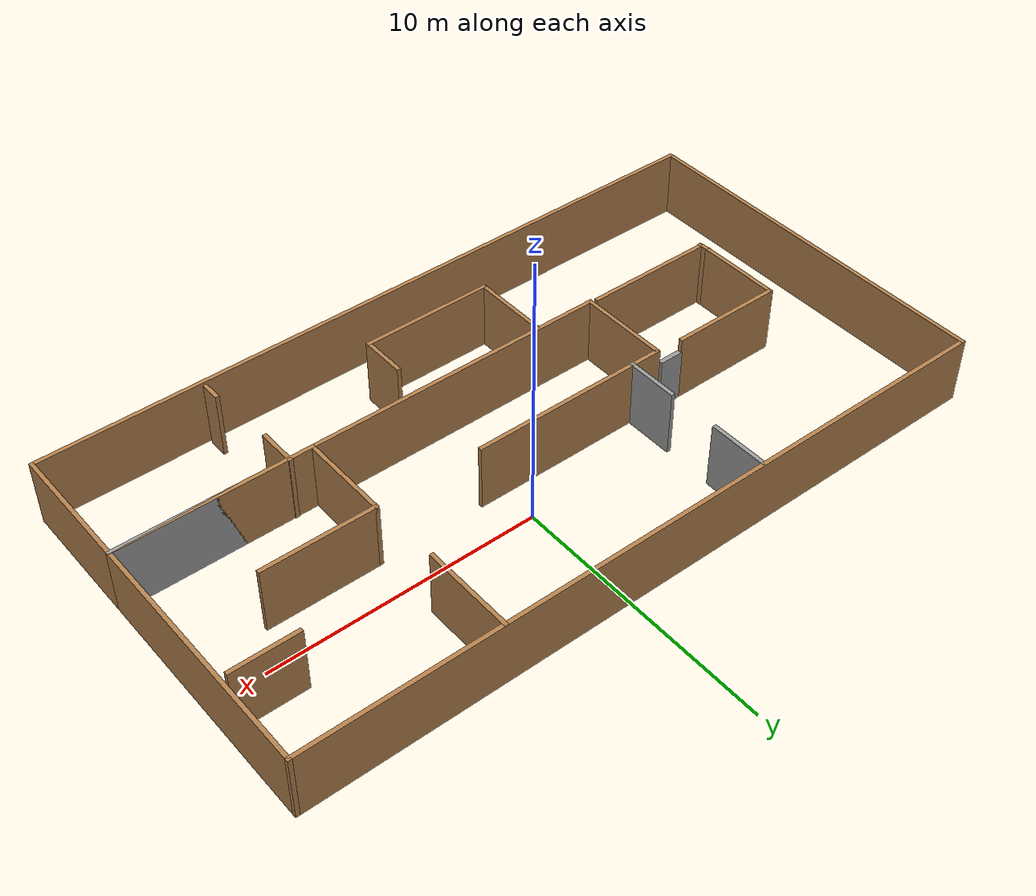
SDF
<?xml version='1.0'?>
<sdf version='1.7'>
  <model name='environment'>
    <pose>-1.32 -2.49 0 0 -0 0</pose>
    <link name='Door_0'>
      <collision name='Door_0_Collision'>
        <geometry>
          <box>
            <size>0.9 0.17 2</size>
          </box>
        </geometry>
        <pose>0 0 1 0 -0 0</pose>
      </collision>
      <visual name='Door_0_Visual'>
        <pose>0 0 1 0 -0 0</pose>
        <geometry>
          <box>
            <size>0.9 0.17 2</size>
          </box>
        </geometry>
        <material>
          <script>
            <uri>file://media/materials/scripts/gazebo.material</uri>
            <name>Gazebo/Grey</name>
          </script>
        </material>
      </visual>
      <pose>-5.70531 1.12793 0 0 -0 0</pose>
    </link>
    <link name='Wall_0'>
      <collision name='Wall_0_Collision'>
        <geometry>
          <box>
            <size>7.5 0.15 2.5</size>
          </box>
        </geometry>
        <pose>0 0 1.25 0 -0 0</pose>
      </collision>
      <visual name='Wall_0_Visual'>
        <pose>0 0 1.25 0 -0 0</pose>
        <geometry>
          <box>
            <size>7.5 0.15 2.5</size>
          </box>
        </geometry>
        <material>
          <script>
            <uri>file://media/materials/scripts/gazebo.material</uri>
            <name>Gazebo/Wood</name>
          </script>
          <ambient>1 1 1 1</ambient>
        </material>
        <meta>
          <layer>0</layer>
        </meta>
      </visual>
      <pose>-1.475 1.05 0 0 -0 3.14159</pose>
    </link>
    <link name='Wall_1'>
      <collision name='Wall_1_Collision'>
        <geometry>
          <box>
            <size>0.15 0.15 2.5</size>
          </box>
        </geometry>
        <pose>0 0 1.25 0 -0 0</pose>
      </collision>
      <visual name='Wall_1_Visual'>
        <pose>0 0 1.25 0 -0 0</pose>
        <geometry>
          <box>
            <size>0.15 0.15 2.5</size>
          </box>
        </geometry>
        <material>
          <script>
            <uri>file://media/materials/scripts/gazebo.material</uri>
            <name>Gazebo/Grey</name>
          </script>
          <ambient>1 1 1 1</ambient>
        </material>
        <meta>
          <layer>0</layer>
        </meta>
      </visual>
      <pose>-5.15 1.05 0 0 -0 0</pose>
    </link>
    <link name='Wall_10'>
      <collision name='Wall_10_Collision'>
        <geometry>
          <box>
            <size>7.25 0.15 2.5</size>
          </box>
        </geometry>
        <pose>0 0 1.25 0 -0 0</pose>
      </collision>
      <visual name='Wall_10_Visual'>
        <pose>0 0 1.25 0 -0 0</pose>
        <geometry>
          <box>
            <size>7.25 0.15 2.5</size>
          </box>
        </geometry>
        <material>
          <script>
            <uri>file://media/materials/scripts/gazebo.material</uri>
            <name>Gazebo/Wood</name>
          </script>
          <ambient>1 1 1 1</ambient>
        </material>
        <meta>
          <layer>0</layer>
        </meta>
      </visual>
      <pose>9.75 -2.3 0 0 -0 3.14159</pose>
    </link>
    <link name='Wall_11'>
      <collision name='Wall_11_Collision'>
        <geometry>
          <box>
            <size>3.5 0.15 2.5</size>
          </box>
        </geometry>
        <pose>0 0 1.25 0 -0 0</pose>
      </collision>
      <visual name='Wall_11_Visual'>
        <pose>0 0 1.25 0 -0 0</pose>
        <geometry>
          <box>
            <size>3.5 0.15 2.5</size>
          </box>
        </geometry>
        <material>
          <script>
            <uri>file://media/materials/scripts/gazebo.material</uri>
            <name>Gazebo/Wood</name>
          </script>
          <ambient>1 1 1 1</ambient>
        </material>
        <meta>
          <layer>0</layer>
        </meta>
      </visual>
      <pose>6.2 -0.625 0 0 -0 1.5708</pose>
    </link>
    <link name='Wall_12'>
      <collision name='Wall_12_Collision'>
        <geometry>
          <box>
            <size>4.25 0.15 2.5</size>
          </box>
        </geometry>
        <pose>0 0 1.25 0 -0 0</pose>
      </collision>
      <visual name='Wall_12_Visual'>
        <pose>0 0 1.25 0 -0 0</pose>
        <geometry>
          <box>
            <size>4.25 0.15 2.5</size>
          </box>
        </geometry>
        <material>
          <script>
            <uri>file://media/materials/scripts/gazebo.material</uri>
            <name>Gazebo/Wood</name>
          </script>
          <ambient>1 1 1 1</ambient>
        </material>
        <meta>
          <layer>0</layer>
        </meta>
      </visual>
      <pose>8.25 1.05 0 0 -0 0</pose>
    </link>
    <link name='Wall_16'>
      <collision name='Wall_16_Collision'>
        <geometry>
          <box>
            <size>3.5 0.15 2.5</size>
          </box>
        </geometry>
        <pose>0 0 1.25 0 -0 0</pose>
      </collision>
      <visual name='Wall_16_Visual'>
        <pose>0 0 1.25 0 -0 0</pose>
        <geometry>
          <box>
            <size>3.5 0.15 2.5</size>
          </box>
        </geometry>
        <material>
          <script>
            <uri>file://media/materials/scripts/gazebo.material</uri>
            <name>Gazebo/Wood</name>
          </script>
          <ambient>1 1 1 1</ambient>
        </material>
        <meta>
          <layer>0</layer>
        </meta>
      </visual>
      <pose>6.0844 5.36147 0 0 -0 -1.5708</pose>
    </link>
    <link name='Wall_18'>
      <collision name='Wall_18_Collision'>
        <geometry>
          <box>
            <size>2.5 0.15 2.5</size>
          </box>
        </geometry>
        <pose>0 0 1.25 0 -0 0</pose>
      </collision>
      <visual name='Wall_18_Visual'>
        <pose>0 0 1.25 0 -0 0</pose>
        <geometry>
          <box>
            <size>2.5 0.15 2.5</size>
          </box>
        </geometry>
        <material>
          <script>
            <uri>file://media/materials/scripts/gazebo.material</uri>
            <name>Gazebo/Wood</name>
          </script>
          <ambient>1 1 1 1</ambient>
        </material>
        <meta>
          <layer>0</layer>
        </meta>
      </visual>
      <pose>11.8187 3.64023 0 0 -0 0</pose>
    </link>
    <link name='Wall_2'>
      <collision name='Wall_2_Collision'>
        <geometry>
          <box>
            <size>3.5 0.15 2.5</size>
          </box>
        </geometry>
        <pose>0 0 1.25 0 -0 0</pose>
      </collision>
      <visual name='Wall_2_Visual'>
        <pose>0 0 1.25 0 -0 0</pose>
        <geometry>
          <box>
            <size>3.5 0.15 2.5</size>
          </box>
        </geometry>
        <material>
          <script>
            <uri>file://media/materials/scripts/gazebo.material</uri>
            <name>Gazebo/Wood</name>
          </script>
          <ambient>1 1 1 1</ambient>
        </material>
        <meta>
          <layer>0</layer>
        </meta>
      </visual>
      <pose>-5.15 -0.625 0 0 -0 -1.5708</pose>
    </link>
    <link name='Wall_20'>
      <collision name='Wall_20_Collision'>
        <geometry>
          <box>
            <size>4.25 0.15 2.5</size>
          </box>
        </geometry>
        <pose>0 0 1.25 0 -0 0</pose>
      </collision>
      <visual name='Wall_20_Visual'>
        <pose>0 0 1.25 0 -0 0</pose>
        <geometry>
          <box>
            <size>4.25 0.15 2.5</size>
          </box>
        </geometry>
        <material>
          <script>
            <uri>file://media/materials/scripts/gazebo.material</uri>
            <name>Gazebo/Wood</name>
          </script>
          <ambient>1 1 1 1</ambient>
        </material>
        <meta>
          <layer>0</layer>
        </meta>
      </visual>
      <pose>-8.24791 1.12793 0 0 -0 3.14159</pose>
    </link>
    <link name='Wall_21'>
      <collision name='Wall_21_Collision'>
        <geometry>
          <box>
            <size>3.25 0.15 2.5</size>
          </box>
        </geometry>
        <pose>0 0 1.25 0 -0 0</pose>
      </collision>
      <visual name='Wall_21_Visual'>
        <pose>0 0 1.25 0 -0 0</pose>
        <geometry>
          <box>
            <size>3.25 0.15 2.5</size>
          </box>
        </geometry>
        <material>
          <script>
            <uri>file://media/materials/scripts/gazebo.material</uri>
            <name>Gazebo/Wood</name>
          </script>
          <ambient>1 1 1 1</ambient>
        </material>
        <meta>
          <layer>0</layer>
        </meta>
      </visual>
      <pose>-10.2979 -0.422066 0 0 -0 -1.5708</pose>
    </link>
    <link name='Wall_22'>
      <collision name='Wall_22_Collision'>
        <geometry>
          <box>
            <size>0.448851 0.15 2.5</size>
          </box>
        </geometry>
        <pose>0 0 1.25 0 -0 0</pose>
      </collision>
      <visual name='Wall_22_Visual'>
        <pose>0 0 1.25 0 -0 0</pose>
        <geometry>
          <box>
            <size>0.448851 0.15 2.5</size>
          </box>
        </geometry>
        <material>
          <script>
            <uri>file://media/materials/scripts/gazebo.material</uri>
            <name>Gazebo/Wood</name>
          </script>
          <ambient>1 1 1 1</ambient>
        </material>
        <meta>
          <layer>0</layer>
        </meta>
      </visual>
      <pose>-10.285 -2.12093 0 0 -0 -1.48408</pose>
    </link>
    <link name='Wall_23'>
      <collision name='Wall_23_Collision'>
        <geometry>
          <box>
            <size>5 0.15 2.5</size>
          </box>
        </geometry>
        <pose>0 0 1.25 0 -0 0</pose>
      </collision>
      <visual name='Wall_23_Visual'>
        <pose>0 0 1.25 0 -0 0</pose>
        <geometry>
          <box>
            <size>5 0.15 2.5</size>
          </box>
        </geometry>
        <material>
          <script>
            <uri>file://media/materials/scripts/gazebo.material</uri>
            <name>Gazebo/Wood</name>
          </script>
          <ambient>1 1 1 1</ambient>
        </material>
        <meta>
          <layer>0</layer>
        </meta>
      </visual>
      <pose>-7.84703 -2.22957 0 0 -0 0</pose>
    </link>
    <link name='Wall_25'>
      <collision name='Wall_25_Collision'>
        <geometry>
          <box>
            <size>2.25 0.15 2.5</size>
          </box>
        </geometry>
        <pose>0 0 1.25 0 -0 0</pose>
      </collision>
      <visual name='Wall_25_Visual'>
        <pose>0 0 1.25 0 -0 0</pose>
        <geometry>
          <box>
            <size>2.25 0.15 2.5</size>
          </box>
        </geometry>
        <material>
          <script>
            <uri>file://media/materials/scripts/gazebo.material</uri>
            <name>Gazebo/Grey</name>
          </script>
          <ambient>1 1 1 1</ambient>
        </material>
        <meta>
          <layer>0</layer>
        </meta>
      </visual>
      <pose>-4.07614 5.95909 0 0 -0 1.5708</pose>
    </link>
    <link name='Wall_27'>
      <collision name='Wall_27_Collision'>
        <geometry>
          <box>
            <size>2 0.15 2.5</size>
          </box>
        </geometry>
        <pose>0 0 1.25 0 -0 0</pose>
      </collision>
      <visual name='Wall_27_Visual'>
        <pose>0 0 1.25 0 -0 0</pose>
        <geometry>
          <box>
            <size>2 0.15 2.5</size>
          </box>
        </geometry>
        <material>
          <script>
            <uri>file://media/materials/scripts/gazebo.material</uri>
            <name>Gazebo/Grey</name>
          </script>
          <ambient>1 1 1 1</ambient>
        </material>
        <meta>
          <layer>0</layer>
        </meta>
      </visual>
      <pose>-4.07614 1.97228 0 0 -0 1.5708</pose>
    </link>
    <link name='Wall_29'>
      <collision name='Wall_29_Collision'>
        <geometry>
          <box>
            <size>1.5 0.15 2.5</size>
          </box>
        </geometry>
        <pose>0 0 1.25 0 -0 0</pose>
      </collision>
      <visual name='Wall_29_Visual'>
        <pose>0 0 1.25 0 -0 0</pose>
        <geometry>
          <box>
            <size>1.5 0.15 2.5</size>
          </box>
        </geometry>
        <material>
          <script>
            <uri>file://media/materials/scripts/gazebo.material</uri>
            <name>Gazebo/Wood</name>
          </script>
          <ambient>1 1 1 1</ambient>
        </material>
        <meta>
          <layer>0</layer>
        </meta>
      </visual>
      <pose>7.06677 -2.94407 0 0 -0 1.5708</pose>
    </link>
    <link name='Wall_3'>
      <collision name='Wall_3_Collision'>
        <geometry>
          <box>
            <size>14.25 0.15 2.5</size>
          </box>
        </geometry>
        <pose>0 0 1.25 0 -0 0</pose>
      </collision>
      <visual name='Wall_3_Visual'>
        <pose>0 0 1.25 0 -0 0</pose>
        <geometry>
          <box>
            <size>14.25 0.15 2.5</size>
          </box>
        </geometry>
        <material>
          <script>
            <uri>file://media/materials/scripts/gazebo.material</uri>
            <name>Gazebo/Wood</name>
          </script>
          <ambient>1 1 1 1</ambient>
        </material>
        <meta>
          <layer>0</layer>
        </meta>
      </visual>
      <pose>1.9 -2.3 0 0 -0 0</pose>
    </link>
    <link name='Wall_31'>
      <collision name='Wall_31_Collision'>
        <geometry>
          <box>
            <size>0.75 0.15 2.5</size>
          </box>
        </geometry>
        <pose>0 0 1.25 0 -0 0</pose>
      </collision>
      <visual name='Wall_31_Visual'>
        <pose>0 0 1.25 0 -0 0</pose>
        <geometry>
          <box>
            <size>0.75 0.15 2.5</size>
          </box>
        </geometry>
        <material>
          <script>
            <uri>file://media/materials/scripts/gazebo.material</uri>
            <name>Gazebo/Wood</name>
          </script>
          <ambient>1 1 1 1</ambient>
        </material>
        <meta>
          <layer>0</layer>
        </meta>
      </visual>
      <pose>7.26791 -6.4936 0 0 -0 -1.5708</pose>
    </link>
    <link name='Wall_33'>
      <collision name='Wall_33_Collision'>
        <geometry>
          <box>
            <size>3 0.15 2.5</size>
          </box>
        </geometry>
        <pose>0 0 1.25 0 -0 0</pose>
      </collision>
      <visual name='Wall_33_Visual'>
        <pose>0 0 1.25 0 -0 0</pose>
        <geometry>
          <box>
            <size>3 0.15 2.5</size>
          </box>
        </geometry>
        <material>
          <script>
            <uri>file://media/materials/scripts/gazebo.material</uri>
            <name>Gazebo/Wood</name>
          </script>
          <ambient>1 1 1 1</ambient>
        </material>
        <meta>
          <layer>0</layer>
        </meta>
      </visual>
      <pose>-2.86933 -3.79703 0 0 -0 -1.5708</pose>
    </link>
    <link name='Wall_34'>
      <collision name='Wall_34_Collision'>
        <geometry>
          <box>
            <size>5 0.15 2.5</size>
          </box>
        </geometry>
        <pose>0 0 1.25 0 -0 0</pose>
      </collision>
      <visual name='Wall_34_Visual'>
        <pose>0 0 1.25 0 -0 0</pose>
        <geometry>
          <box>
            <size>5 0.15 2.5</size>
          </box>
        </geometry>
        <material>
          <script>
            <uri>file://media/materials/scripts/gazebo.material</uri>
            <name>Gazebo/Wood</name>
          </script>
          <ambient>1 1 1 1</ambient>
        </material>
        <meta>
          <layer>0</layer>
        </meta>
      </visual>
      <pose>-0.444329 -5.22203 0 0 -0 0</pose>
    </link>
    <link name='Wall_35'>
      <collision name='Wall_35_Collision'>
        <geometry>
          <box>
            <size>1.75 0.15 2.5</size>
          </box>
        </geometry>
        <pose>0 0 1.25 0 -0 0</pose>
      </collision>
      <visual name='Wall_35_Visual'>
        <pose>0 0 1.25 0 -0 0</pose>
        <geometry>
          <box>
            <size>1.75 0.15 2.5</size>
          </box>
        </geometry>
        <material>
          <script>
            <uri>file://media/materials/scripts/gazebo.material</uri>
            <name>Gazebo/Wood</name>
          </script>
          <ambient>1 1 1 1</ambient>
        </material>
        <meta>
          <layer>0</layer>
        </meta>
      </visual>
      <pose>1.98067 -4.42203 0 0 -0 1.5708</pose>
    </link>
    <link name='Wall_4'>
      <collision name='Wall_4_Collision'>
        <geometry>
          <box>
            <size>4.5 0.15 2.5</size>
          </box>
        </geometry>
        <pose>0 0 1.25 0 -0 0</pose>
      </collision>
      <visual name='Wall_4_Visual'>
        <pose>0 0 1.25 0 -0 0</pose>
        <geometry>
          <box>
            <size>4.5 0.15 2.5</size>
          </box>
        </geometry>
        <material>
          <script>
            <uri>file://media/materials/scripts/gazebo.material</uri>
            <name>Gazebo/Grey</name>
          </script>
          <ambient>1 1 1 1</ambient>
        </material>
        <meta>
          <layer>0</layer>
        </meta>
      </visual>
      <pose>11.125 -2.3 0 0 -0 0</pose>
    </link>
    <link name='Wall_5'>
      <collision name='Wall_5_Collision'>
        <geometry>
          <box>
            <size>9.5 0.15 2.5</size>
          </box>
        </geometry>
        <pose>0 0 1.25 0 -0 0</pose>
      </collision>
      <visual name='Wall_5_Visual'>
        <pose>0 0 1.25 0 -0 0</pose>
        <geometry>
          <box>
            <size>9.5 0.15 2.5</size>
          </box>
        </geometry>
        <material>
          <script>
            <uri>file://media/materials/scripts/gazebo.material</uri>
            <name>Gazebo/Wood</name>
          </script>
          <ambient>1 1 1 1</ambient>
        </material>
        <meta>
          <layer>0</layer>
        </meta>
      </visual>
      <pose>13.3 2.375 0 0 -0 1.5708</pose>
    </link>
    <link name='Wall_6'>
      <collision name='Wall_6_Collision'>
        <geometry>
          <box>
            <size>26.75 0.15 2.5</size>
          </box>
        </geometry>
        <pose>0 0 1.25 0 -0 0</pose>
      </collision>
      <visual name='Wall_6_Visual'>
        <pose>0 0 1.25 0 -0 0</pose>
        <geometry>
          <box>
            <size>26.75 0.15 2.5</size>
          </box>
        </geometry>
        <material>
          <script>
            <uri>file://media/materials/scripts/gazebo.material</uri>
            <name>Gazebo/Wood</name>
          </script>
          <ambient>1 1 1 1</ambient>
        </material>
        <meta>
          <layer>0</layer>
        </meta>
      </visual>
      <pose>0 7.05 0 0 -0 3.14159</pose>
    </link>
    <link name='Wall_7'>
      <collision name='Wall_7_Collision'>
        <geometry>
          <box>
            <size>14.25 0.15 2.5</size>
          </box>
        </geometry>
        <pose>0 0 1.25 0 -0 0</pose>
      </collision>
      <visual name='Wall_7_Visual'>
        <pose>0 0 1.25 0 -0 0</pose>
        <geometry>
          <box>
            <size>14.25 0.15 2.5</size>
          </box>
        </geometry>
        <material>
          <script>
            <uri>file://media/materials/scripts/gazebo.material</uri>
            <name>Gazebo/Wood</name>
          </script>
          <ambient>1 1 1 1</ambient>
        </material>
        <meta>
          <layer>0</layer>
        </meta>
      </visual>
      <pose>-13.3 -0 0 0 -0 -1.5708</pose>
    </link>
    <link name='Wall_8'>
      <collision name='Wall_8_Collision'>
        <geometry>
          <box>
            <size>26.75 0.15 2.5</size>
          </box>
        </geometry>
        <pose>0 0 1.25 0 -0 0</pose>
      </collision>
      <visual name='Wall_8_Visual'>
        <pose>0 0 1.25 0 -0 0</pose>
        <geometry>
          <box>
            <size>26.75 0.15 2.5</size>
          </box>
        </geometry>
        <material>
          <script>
            <uri>file://media/materials/scripts/gazebo.material</uri>
            <name>Gazebo/Wood</name>
          </script>
          <ambient>1 1 1 1</ambient>
        </material>
        <meta>
          <layer>0</layer>
        </meta>
      </visual>
      <pose>0 -7.05 0 0 -0 0</pose>
    </link>
    <link name='Wall_9'>
      <collision name='Wall_9_Collision'>
        <geometry>
          <box>
            <size>4.9 0.15 2.5</size>
          </box>
        </geometry>
        <pose>0 0 1.25 0 -0 0</pose>
      </collision>
      <visual name='Wall_9_Visual'>
        <pose>0 0 1.25 0 -0 0</pose>
        <geometry>
          <box>
            <size>4.9 0.15 2.5</size>
          </box>
        </geometry>
        <material>
          <script>
            <uri>file://media/materials/scripts/gazebo.material</uri>
            <name>Gazebo/Wood</name>
          </script>
          <ambient>1 1 1 1</ambient>
        </material>
        <meta>
          <layer>0</layer>
        </meta>
      </visual>
      <pose>13.3 -4.675 0 0 -0 1.5708</pose>
    </link>
    <static>1</static>
  </model>
</sdf>
